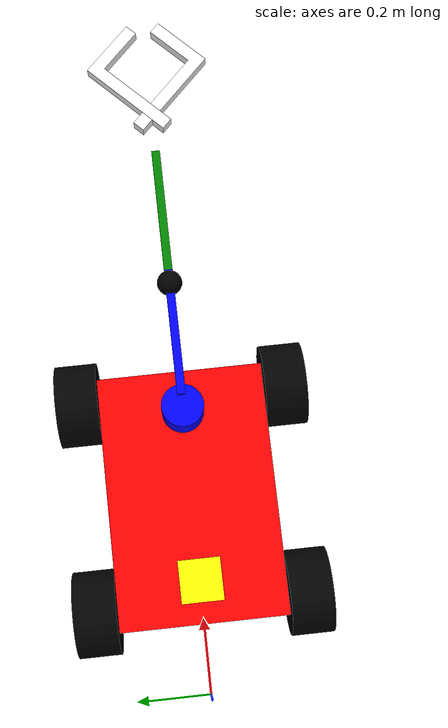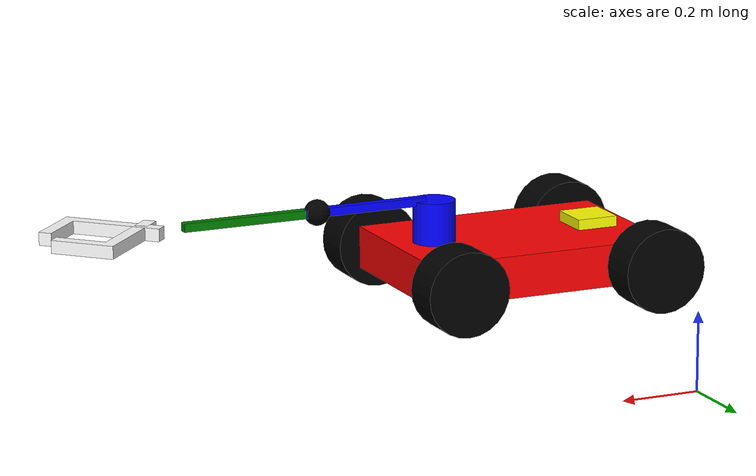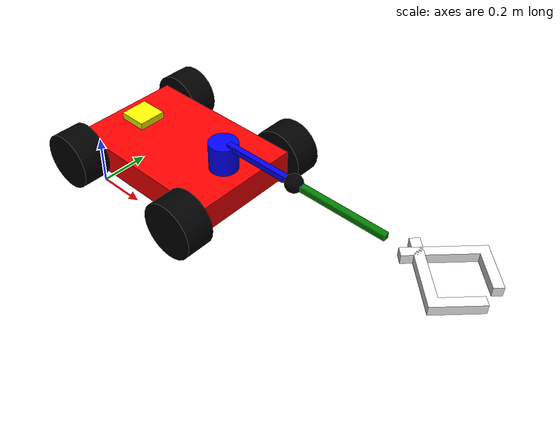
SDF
<sdf version="1.7">
 <world name="world_demo">
  <physics name="1ms" type="ignored">
   <max_step_size>0.01</max_step_size>
   <real_time_factor>1</real_time_factor>
  </physics>
  <plugin name="ignition::gazebo::systems::Physics" filename="libignition-gazebo-physics-system.so"/>
  <plugin name="ignition::gazebo::systems::UserCommands" filename="libignition-gazebo-user-commands-system.so"/>
  <plugin name="ignition::gazebo::systems::SceneBroadcaster" filename="libignition-gazebo-scene-broadcaster-system.so"/>
  <plugin name="ignition::gazebo::systems::Imu" filename="ignition-gazebo-imu-system"/>
  <plugin name="ignition::gazebo::systems::Sensors" filename="ignition-gazebo-sensors-system">
   <render_engine>ogre2</render_engine>
  </plugin>
  <scene>
   <ambient>1 1 1 1</ambient>
   <background>0.3 0.7 0.9 1</background>
   <shadows>0</shadows>
   <grid>1</grid>
  </scene>
  <model name="ground_plane">
   <static>1</static>
   <link name="link">
    <collision name="collision">
     <geometry><plane><normal>0 0 1</normal><size>1 1</size></plane></geometry>
    </collision>
   </link>
  </model>
  <model name="depot_collision">
   <static>1</static>
   <pose>7.19009 1.09982 0 0 0 0</pose>
   <link name="collision_link">
    <collision name="wall1">
     <pose>0 -7.6129 4.5 0 0 0</pose>
     <geometry><box><size>30.167 0.08 9</size></box></geometry>
    </collision>
    <collision name="wall2">
     <pose>0 7.2875 4.5 0 0 0</pose>
     <geometry><box><size>30.167 0.08 9</size></box></geometry>
    </collision>
    <collision name="wall3">
     <pose>-15 0 4.5 0 0 0</pose>
     <geometry><box><size>0.08 15.360 9</size></box></geometry>
    </collision>
    <collision name="wall4">
     <pose>15 0 4.5 0 0 0</pose>
     <geometry><box><size>0.08 15.360 9</size></box></geometry>
    </collision>
    <collision name="boxes1">
     <pose>0.22268 -4.7268 0.68506 0 0 0</pose>
     <geometry><box><size>1.288 1.422 1.288</size></box></geometry>
    </collision>
    <collision name="boxes2">
     <pose>3.1727 -4.7268 0.68506 0 0 0</pose>
     <geometry><box><size>1.288 1.422 1.288</size></box></geometry>
    </collision>
    <collision name="boxes3">
     <pose>5.95268 -4.7268 0.68506 0 0 0</pose>
     <geometry><box><size>1.288 1.422 1.288</size></box></geometry>
    </collision>
    <collision name="boxes4">
     <pose>8.55887 -4.7268 0.68506 0 0 0</pose>
     <geometry><box><size>1.288 1.422 1.288</size></box></geometry>
    </collision>
    <collision name="boxes5">
     <pose>11.326 -4.7268 0.68506 0 0 0</pose>
     <geometry><box><size>1.288 1.422 1.288</size></box></geometry>
    </collision>
    <collision name="boxes6">
     <pose>0.22268 -2.37448 0.68506 0 0 0</pose>
     <geometry><box><size>1.288 1.422 1.288</size></box></geometry>
    </collision>
    <collision name="boxes7">
     <pose>3.1727 -2.37448 0.68506 0 0 0</pose>
     <geometry><box><size>1.288 1.422 1.288</size></box></geometry>
    </collision>
    <collision name="boxes8">
     <pose>5.95268 -2.37448 0.68506 0 0 0</pose>
     <geometry><box><size>1.288 1.422 1.288</size></box></geometry>
    </collision>
    <collision name="boxes9">
     <pose>8.55887 -2.37448 0.68506 0 0 0</pose>
     <geometry><box><size>1.288 1.422 1.288</size></box></geometry>
    </collision>
    <collision name="boxes10">
     <pose>11.326 -2.37448 0.68506 0 0 0</pose>
     <geometry><box><size>1.288 1.422 1.288</size></box></geometry>
    </collision>
    <collision name="boxes11">
     <pose>-1.2268 4.1557 0.68506 0 0 -1.02799893</pose>
     <geometry><box><size>1.288 1.422 1.288</size></box></geometry>
    </collision>
    <collision name="pilar1">
     <pose>-7.5402 3.6151 1 0 0 0</pose>
     <geometry><box><size>0.465 0.465 2</size></box></geometry>
    </collision>
    <collision name="pilar2">
     <pose>7.4575 3.6151 1 0 0 0</pose>
     <geometry><box><size>0.465 0.465 2</size></box></geometry>
    </collision>
    <collision name="pilar3">
     <pose>-7.5402 -3.8857 1 0 0 0</pose>
     <geometry><box><size>0.465 0.465 2</size></box></geometry>
    </collision>
    <collision name="pilar4">
     <pose>7.4575 -3.8857 1 0 0 0</pose>
     <geometry><box><size>0.465 0.465 2</size></box></geometry>
    </collision>
    <collision name="pallet_mover1">
     <pose>-0.6144 -2.389 0.41838 0 0 0</pose>
     <geometry><box><size>0.363 0.440 0.719</size></box></geometry>
    </collision>
    <collision name="pallet_mover2">
     <pose>-1.6004 4.8225 0.41838 0 0 0</pose>
     <geometry><box><size>0.363 0.244 0.719</size></box></geometry>
    </collision>
    <collision name="stairs">
     <pose>13.018 3.1652 0.25 0 0 0</pose>
     <geometry><box><size>1.299 0.6 0.5</size></box></geometry>
    </collision>
    <collision name="shelfs1">
     <pose>1.4662 -0.017559 0.5 0 0 0</pose>
     <geometry><cylinder><radius>0.03</radius><length>1</length></cylinder></geometry>
    </collision>
    <collision name="shelfs2">
     <pose>2.6483 -0.017559 0.5 0 0 0</pose>
     <geometry><cylinder><radius>0.03</radius><length>1</length></cylinder></geometry>
    </collision>
    <collision name="shelfs3">
     <pose>5.3247 -0.017559 0.5 0 0 0</pose>
     <geometry><cylinder><radius>0.03</radius><length>1</length></cylinder></geometry>
    </collision>
    <collision name="shelfs4">
     <pose>6.5063 -0.017559 0.5 0 0 0</pose>
     <geometry><cylinder><radius>0.03</radius><length>1</length></cylinder></geometry>
    </collision>
    <collision name="shelfs5">
     <pose>9.0758 -0.017559 0.5 0 0 0</pose>
     <geometry><cylinder><radius>0.03</radius><length>1</length></cylinder></geometry>
    </collision>
    <collision name="shelfs6">
     <pose>10.258 -0.017559 0.5 0 0 0</pose>
     <geometry><cylinder><radius>0.03</radius><length>1</length></cylinder></geometry>
    </collision>
    <collision name="shelfs7">
     <pose>1.4662 2.5664 0.5 0 0 0</pose>
     <geometry><cylinder><radius>0.03</radius><length>1</length></cylinder></geometry>
    </collision>
    <collision name="shelfs8">
     <pose>2.6483 2.5664 0.5 0 0 0</pose>
     <geometry><cylinder><radius>0.03</radius><length>1</length></cylinder></geometry>
    </collision>
    <collision name="shelfs9">
     <pose>5.3247 2.5664 0.5 0 0 0</pose>
     <geometry><cylinder><radius>0.03</radius><length>1</length></cylinder></geometry>
    </collision>
    <collision name="shelfs10">
     <pose>6.5063 2.5664 0.5 0 0 0</pose>
     <geometry><cylinder><radius>0.03</radius><length>1</length></cylinder></geometry>
    </collision>
    <collision name="shelfs11">
     <pose>9.0758 2.5664 0.5 0 0 0</pose>
     <geometry><cylinder><radius>0.03</radius><length>1</length></cylinder></geometry>
    </collision>
    <collision name="shelfs12">
     <pose>10.258 2.5664 0.5 0 0 0</pose>
     <geometry><cylinder><radius>0.03</radius><length>1</length></cylinder></geometry>
    </collision>
    <collision name="shelfs13">
     <pose>1.4662 5.1497 0.5 0 0 0</pose>
     <geometry><cylinder><radius>0.03</radius><length>1</length></cylinder></geometry>
    </collision>
    <collision name="shelfs14">
     <pose>2.6483 5.1497 0.5 0 0 0</pose>
     <geometry><cylinder><radius>0.03</radius><length>1</length></cylinder></geometry>
    </collision>
    <collision name="shelfs15">
     <pose>5.3247 5.1497 0.5 0 0 0</pose>
     <geometry><cylinder><radius>0.03</radius><length>1</length></cylinder></geometry>
    </collision>
    <collision name="shelfs16">
     <pose>6.5063 5.1497 0.5 0 0 0</pose>
     <geometry><cylinder><radius>0.03</radius><length>1</length></cylinder></geometry>
    </collision>
    <collision name="shelfs17">
     <pose>9.0758 5.1497 0.5 0 0 0</pose>
     <geometry><cylinder><radius>0.03</radius><length>1</length></cylinder></geometry>
    </collision>
    <collision name="shelfs18">
     <pose>10.258 5.1497 0.5 0 0 0</pose>
     <geometry><cylinder><radius>0.03</radius><length>1</length></cylinder></geometry>
    </collision>
   </link>
  </model>
  <model name="vehicle_blue" canonical_link="chassis">
   <pose relative_to="world">0 0 0 0 0 0</pose>
   <link name="chassis">
    <pose relative_to="__model__">0.5 0 0.4 0 0 0</pose>
    <inertial>
     <mass>1.14395</mass>
     <inertia>
      <ixx>0.126164</ixx>
      <ixy>0</ixy>
      <ixz>0</ixz>
      <iyy>0.416519</iyy>
      <iyz>0</iyz>
      <izz>0.481014</izz>
     </inertia>
    </inertial>
    <visual name="visual">
     <geometry><box><size>0.6 0.4 0.1</size></box></geometry>
     <material>
      <ambient>1.0 0.0 0.0 1</ambient>
      <diffuse>1.0 0.0 0.0 1</diffuse>
      <specular>1.0 0.0 0.0 1</specular>
     </material>
    </visual>
    <collision name="collision"><geometry><box><size>0.6 0.4 0.1</size></box></geometry></collision>
   </link>
   <link name="left_wheel_back">
    <pose relative_to="chassis">-0.25 0.25 0.0 1.5707 0 0</pose>
    <inertial>
     <mass>2</mass>
     <inertia><ixx>0.145833</ixx><ixy>0</ixy><ixz>0</ixz><iyy>0.145833</iyy><iyz>0</iyz><izz>0.125</izz></inertia>
    </inertial>
    <visual name="visual">
     <geometry><cylinder><radius>0.1</radius><length>0.1</length></cylinder></geometry>
     <material><ambient>0 0 0 1</ambient><diffuse>0 0 0 1</diffuse><specular>0 0 0 1</specular></material>
    </visual>
    <collision name="collision">
     <geometry><cylinder><radius>0.1</radius><length>0.1</length></cylinder></geometry>
    </collision>
   </link>
   <link name="left_wheel_front">
    <pose relative_to="chassis">0.25 0.25 0 1.5707 0 0</pose>
    <inertial>
     <mass>2</mass>
     <inertia><ixx>0.145833</ixx><ixy>0</ixy><ixz>0</ixz><iyy>0.145833</iyy><iyz>0</iyz><izz>0.125</izz></inertia>
    </inertial>
    <visual name="visual">
     <geometry><cylinder><radius>0.1</radius><length>0.1</length></cylinder></geometry>
     <material><ambient>0 0 0 1</ambient><diffuse>0 0 0 1</diffuse><specular>0 0 0 1</specular></material>
    </visual>
    <collision name="collision">
     <geometry><cylinder><radius>0.1</radius><length>0.1</length></cylinder></geometry>
    </collision>
   </link>
   <link name="right_wheel_back">
    <pose relative_to="chassis">-0.25 -0.25 0 1.5707 0 0</pose>
    <inertial>
     <mass>2</mass>
     <inertia><ixx>0.145833</ixx><ixy>0</ixy><ixz>0</ixz><iyy>0.145833</iyy><iyz>0</iyz><izz>0.125</izz></inertia>
    </inertial>
    <visual name="visual">
     <geometry><cylinder><radius>0.1</radius><length>0.1</length></cylinder></geometry>
     <material><ambient>0 0 0 1</ambient><diffuse>0 0 0 1</diffuse><specular>0 0 0 1</specular></material>
    </visual>
    <collision name="collision">
     <geometry><cylinder><radius>0.1</radius><length>0.1</length></cylinder></geometry>
    </collision>
   </link>
   <link name="right_wheel_front">
    <pose relative_to="chassis">0.25 -0.25 0 1.5707 0 0</pose>
    <inertial>
     <mass>2</mass>
     <inertia><ixx>0.145833</ixx><ixy>0</ixy><ixz>0</ixz><iyy>0.145833</iyy><iyz>0</iyz><izz>0.125</izz></inertia>
    </inertial>
    <visual name="visual">
     <geometry><cylinder><radius>0.1</radius><length>0.1</length></cylinder></geometry>
     <material><ambient>0 0 0 1</ambient><diffuse>0 0 0 1</diffuse><specular>0 0 0 1</specular></material>
    </visual>
    <collision name="collision">
     <geometry><cylinder><radius>0.1</radius><length>0.1</length></cylinder></geometry>
    </collision>
   </link>
   <joint name="left_wheel_back_joint" type="revolute">
    <pose relative_to="left_wheel_back"/>
    <parent>chassis</parent>
    <child>left_wheel_back</child>
    <axis>
     <xyz expressed_in="__model__">0 1 0</xyz>
     <limit><lower>-1.79769e+308</lower><upper>1.79769e+308</upper></limit>
    </axis>
   </joint>
   <joint name="right_wheel_back_joint" type="revolute">
    <pose relative_to="right_wheel_back"/>
    <parent>chassis</parent>
    <child>right_wheel_back</child>
    <axis>
     <xyz expressed_in="__model__">0 1 0</xyz>
     <limit><lower>-1.79769e+308</lower><upper>1.79769e+308</upper></limit>
    </axis>
   </joint>
   <joint name="left_wheel_front_joint" type="revolute">
    <pose relative_to="left_wheel_front"/>
    <parent>chassis</parent>
    <child>left_wheel_front</child>
    <axis>
     <xyz expressed_in="__model__">0 1 0</xyz>
     <limit><lower>-1.79769e+308</lower><upper>1.79769e+308</upper></limit>
    </axis>
   </joint>
   <joint name="right_wheel_front_joint" type="revolute">
    <pose relative_to="right_wheel_front"/>
    <parent>chassis</parent>
    <child>right_wheel_front</child>
    <axis>
     <xyz expressed_in="__model__">0 1 0</xyz>
     <limit><lower>-1.79769e+308</lower><upper>1.79769e+308</upper></limit>
    </axis>
   </joint>
   <link name="camera_module">
    <pose relative_to="chassis">-0.2 0 0.05  0 0 0</pose>
    <inertial>
     <mass>1.14395</mass>
     <inertia>
      <ixx>0.126164</ixx>
      <ixy>0</ixy>
      <ixz>0</ixz>
      <iyy>0.416519</iyy>
      <iyz>0</iyz>
      <izz>0.481014</izz>
     </inertia>
    </inertial>
    <visual name="visual">
     <geometry><box><size>0.1 0.1 0.05</size></box></geometry>
     <material>
      <ambient>1.0 1.0 0.0 1</ambient>
      <diffuse>1.0 1.0 0.0 1</diffuse>
      <specular>1.0 1.0 0.0 1</specular>
     </material>
    </visual>
    <collision name="collision"><geometry><box><size>0.2 0.2 0.1</size></box></geometry></collision>
   </link>
   <joint name="camera_module_joint" type="fixed">
    <pose relative_to="chassis"/>
    <parent>chassis</parent>
    <child>camera_module</child>
   </joint>
   <link name="arm_base">
    <pose relative_to="chassis">0.2 0 0.1  0 0 0</pose>
    <inertial>
     <mass>1.14395</mass>
     <inertia>
      <ixx>0.126164</ixx>
      <ixy>0</ixy>
      <ixz>0</ixz>
      <iyy>0.416519</iyy>
      <iyz>0</iyz>
      <izz>0.481014</izz>
     </inertia>
    </inertial>
    <visual name="visual">
     <geometry><cylinder><radius>0.05</radius><length>0.1</length></cylinder></geometry>
     <material>
      <ambient>0.0 0.0 1.0 1</ambient>
      <diffuse>0.0 0.0 1.0 1</diffuse>
      <specular>0.0 0.0 1.0 1</specular>
     </material>
    </visual>
    <collision name="collision">
     <geometry><cylinder><radius>0.05</radius><length>0.1</length></cylinder></geometry>
    </collision>
   </link>
   <joint name="arm_base_joint" type="fixed">
    <pose relative_to="chassis"/>
    <parent>chassis</parent>
    <child>arm_base</child>
   </joint>
   <link name="arm1">
    <pose relative_to="arm_base">0.175 0 0.05 0 0 0</pose>
    <inertial>
     <mass>2</mass>
     <inertia><ixx>0.145833</ixx><ixy>0</ixy><ixz>0</ixz><iyy>0.145833</iyy><iyz>0</iyz><izz>0.125</izz></inertia>
    </inertial>
    <visual name="visual">
     <geometry><box><size>0.3 0.02 0.02</size></box></geometry>
     <material><ambient>0 0 1 1</ambient><diffuse>0 0 1 1</diffuse><specular>0 0 1 1</specular></material>
    </visual>
    <collision name="collision"><geometry><box><size>0.3 0.02 0.02</size></box></geometry></collision>
   </link>
   <joint name="arm1_joint" type="revolute">
    <pose relative_to="arm_base">0.025 0 0.05 0 0 0</pose>
    <parent>arm_base</parent>
    <child>arm1</child>
    <axis><xyz expressed_in="__model__">0 1 0</xyz><limit><lower>-1.57</lower><upper>1.57</upper></limit></axis>
   </joint>
   <link name="arm1_ball">
    <pose relative_to="arm1">0.12 0 0.0 0 0 0</pose>
    <inertial>
     <mass>2</mass>
     <inertia><ixx>0.145833</ixx><ixy>0</ixy><ixz>0</ixz><iyy>0.145833</iyy><iyz>0</iyz><izz>0.125</izz></inertia>
    </inertial>
    <visual name="visual">
     <geometry><sphere><radius>0.03</radius></sphere></geometry>
     <material><ambient>0 0 0 1</ambient><diffuse>0 0 0 1</diffuse><specular>0 0 0 1</specular></material>
    </visual>
    <collision name="collision"><geometry><sphere><radius>0.01</radius></sphere></geometry></collision>
   </link>
   <joint name="arm1_ball_joint" type="fixed">
    <pose relative_to="arm1"/>
    <parent>arm1</parent>
    <child>arm1_ball</child>
   </joint>
   <link name="arm2">
    <pose relative_to="arm1">0.3 0 0 0 0 0</pose>
    <inertial>
     <mass>2</mass>
     <inertia><ixx>0.145833</ixx><ixy>0</ixy><ixz>0</ixz><iyy>0.145833</iyy><iyz>0</iyz><izz>0.125</izz></inertia>
    </inertial>
    <visual name="visual">
     <geometry><box><size>0.3 0.02 0.02</size></box></geometry>
     <material><ambient>0 0.5 0 1</ambient><diffuse>0 0.5 0 1</diffuse><specular>0 0.5 0 1</specular></material>
    </visual>
    <collision name="collision"><geometry><box><size>0.3 0.02 0.02</size></box></geometry></collision>
   </link>
   <joint name="arm2_joint" type="revolute">
    <pose relative_to="arm1">0.15 0 0 0 0 0</pose>
    <parent>arm1</parent>
    <child>arm2</child>
    <axis><xyz expressed_in="__model__">0 1 0</xyz><limit><lower>-1.57</lower><upper>1.57</upper></limit></axis>
   </joint>
   <link name="left_gripper">
    <pose relative_to="arm2">0.3 0.05 0 0 0 0.785</pose>
    <inertial>
     <mass>2</mass>
     <inertia><ixx>0.145833</ixx><ixy>0</ixy><ixz>0</ixz><iyy>0.145833</iyy><iyz>0</iyz><izz>0.125</izz></inertia>
    </inertial>
    <visual name="visual">
     <geometry><mesh><uri>file://STL_Files/Left_gripper.stl</uri><scale>0.03 0.03 0.03</scale></mesh></geometry>
     <material><ambient>1 1 1 1</ambient><diffuse>1 1 1 1</diffuse><specular>1 1 1 1</specular></material>
    </visual>
    <collision name="collision"><geometry><box><size>0.3 0.02 0.02</size></box></geometry></collision>
   </link>
   <joint name="left_gripper_joint" type="revolute">
    <parent>arm2</parent>
    <child>left_gripper</child>
    <axis><xyz expressed_in="__model__">0 1 0</xyz><limit><lower>-1.57</lower><upper>1.57</upper></limit></axis>
   </joint>
   <link name="right_gripper">
    <pose relative_to="arm2">0.3 -0.05 0 0 0 -0.785</pose>
    <inertial>
     <mass>2</mass>
     <inertia><ixx>0.145833</ixx><ixy>0</ixy><ixz>0</ixz><iyy>0.145833</iyy><iyz>0</iyz><izz>0.125</izz></inertia>
    </inertial>
    <visual name="visual">
     <geometry><mesh><uri>file://STL_Files/Right_gripper.stl</uri><scale>0.03 0.03 0.03</scale></mesh></geometry>
     <material><ambient>1 1 1 1</ambient><diffuse>1 1 1 1</diffuse><specular>1 1 1 1</specular></material>
    </visual>
    <collision name="collision"><geometry><box><size>0.3 0.02 0.02</size></box></geometry></collision>
   </link>
   <joint name="right_gripper_joint" type="revolute">
    <parent>arm2</parent>
    <child>right_gripper</child>
    <axis><xyz expressed_in="__model__">0 1 0</xyz><limit><lower>-1.57</lower><upper>1.57</upper></limit></axis>
   </joint>
   <plugin filename="libignition-gazebo-diff-drive-system.so" name="ignition::gazebo::systems::DiffDrive">
    <left_joint>left_wheel_back_joint</left_joint>
    <right_joint>right_wheel_back_joint</right_joint>
    <wheel_separation>0.5</wheel_separation>
    <wheel_radius>0.1</wheel_radius>
    <odom_publish_frequency>1</odom_publish_frequency>
    <command_topic>cmd_vel</command_topic>
   </plugin>
   <plugin filename="libignition-gazebo-diff-drive-system.so" name="ignition::gazebo::systems::DiffDrive">
    <left_joint>left_wheel_front_joint</left_joint>
    <right_joint>right_wheel_front_joint</right_joint>
    <wheel_separation>0.5</wheel_separation>
    <wheel_radius>0.1</wheel_radius>
    <odom_publish_frequency>1</odom_publish_frequency>
    <command_topic>cmd_vel</command_topic>
   </plugin>
  </model>
  <plugin filename="libignition-gazebo-triggered-publisher-system.so" name="ignition::gazebo::systems::TriggeredPublisher">
   <input type="ignition.msgs.Int32" topic="/keyboard/keypress"><match field="data">16777235</match></input>
   <output type="ignition.msgs.Twist" topic="/cmd_vel">linear: {x: 0.2}, angular: {z: 0.0}</output>
  </plugin>
  <plugin filename="libignition-gazebo-triggered-publisher-system.so" name="ignition::gazebo::systems::TriggeredPublisher">
   <input type="ignition.msgs.Int32" topic="/keyboard/keypress"><match field="data">16777237</match></input>
   <output type="ignition.msgs.Twist" topic="/cmd_vel">linear: {x: -0.2}, angular: {z: 0.0}</output>
  </plugin>
  <plugin filename="libignition-gazebo-triggered-publisher-system.so" name="ignition::gazebo::systems::TriggeredPublisher">
   <input type="ignition.msgs.Int32" topic="/keyboard/keypress"><match field="data">16777236</match></input>
   <output type="ignition.msgs.Twist" topic="/cmd_vel">linear: {x: 0.0}, angular: {z: -1}</output>
  </plugin>
  <plugin filename="libignition-gazebo-triggered-publisher-system.so" name="ignition::gazebo::systems::TriggeredPublisher">
   <input type="ignition.msgs.Int32" topic="/keyboard/keypress"><match field="data">16777234</match></input>
   <output type="ignition.msgs.Twist" topic="/cmd_vel">linear: {x: 0.0}, angular: {z: 1}</output>
  </plugin>
  <plugin filename="libignition-gazebo-triggered-publisher-system.so" name="ignition::gazebo::systems::TriggeredPublisher">
   <input type="ignition.msgs.Int32" topic="/keyboard/keypress"><match field="data">81</match></input>
   <output type="ignition.msgs.Twist" topic="/cmd_vel">linear: {x: 0.0}, angular: {z: 0.0}</output>
  </plugin>
 </world>
</sdf>
